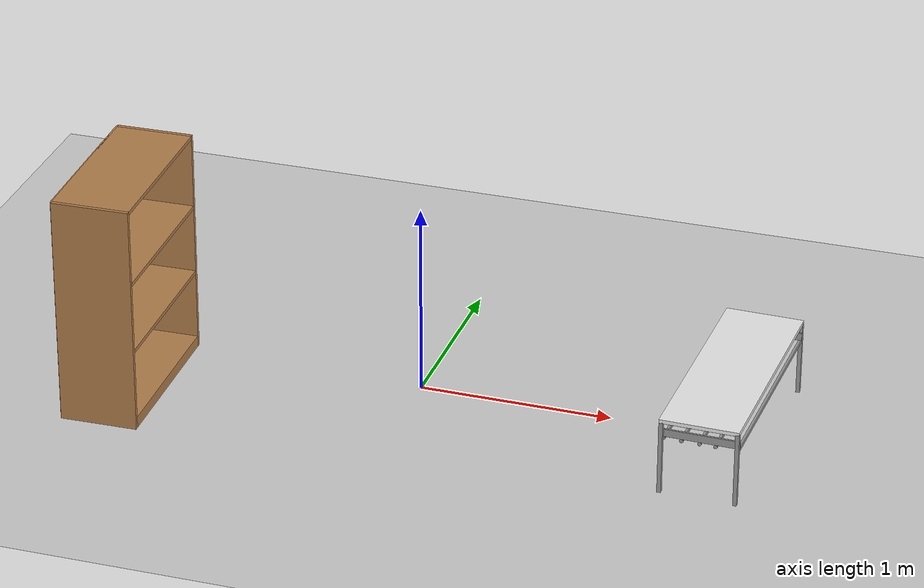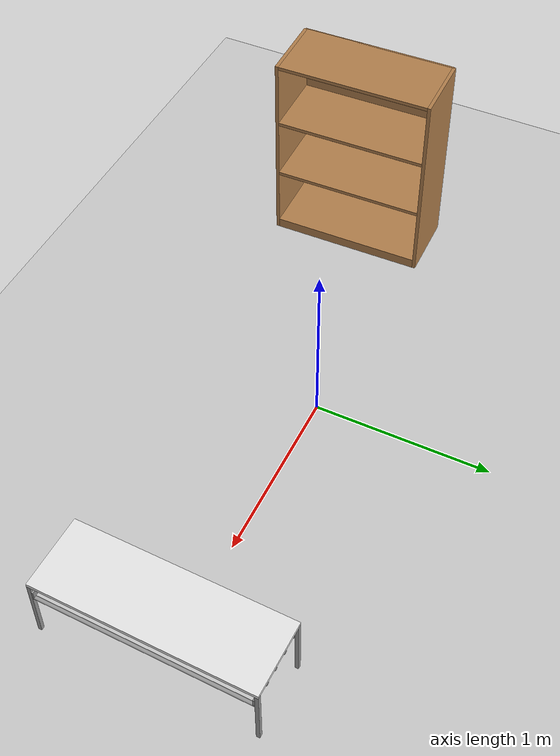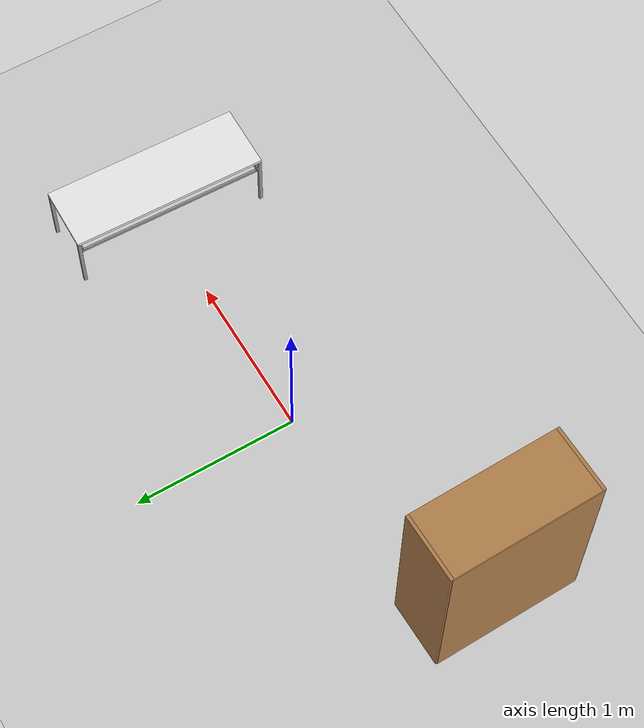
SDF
<sdf version="1.6">
 <world name="default">
  <physics name="default_physics" default="0" type="ode">
   <max_step_size>0.001</max_step_size>
   <real_time_factor>1</real_time_factor>
   <real_time_update_rate>1000</real_time_update_rate>
  </physics>
  <light name="sun" type="directional">
   <pose>0 0 10 0 -0 0</pose>
   <diffuse>0.8 0.8 0.8 1</diffuse>
   <specular>0.2 0.2 0.2 1</specular>
   <attenuation>
    <range>1000</range>
    <constant>0.9</constant>
    <linear>0.01</linear>
    <quadratic>0.001</quadratic>
   </attenuation>
   <direction>-0.5 0.1 -0.9</direction>
  </light>
  <model name="ground_plane">
   <static>1</static>
   <link name="link">
    <collision name="collision">
     <geometry><plane><normal>0 0 1</normal><size>100 100</size></plane></geometry>
     <surface>
      <contact><collide_bitmask>65535</collide_bitmask></contact>
      <friction><ode><mu>100</mu><mu2>50</mu2></ode></friction>
     </surface>
    </collision>
    <visual name="visual">
     <cast_shadows>0</cast_shadows>
     <geometry><plane><normal>0 0 1</normal><size>100 100</size></plane></geometry>
     <material>
      <script><uri>file://media/materials/scripts/gazebo.material</uri><name>Gazebo/Grey</name></script>
     </material>
    </visual>
   </link>
  </model>
  <gravity>0 0 -9.8</gravity>
  <magnetic_field>6e-06 2.3e-05 -4.2e-05</magnetic_field>
  <atmosphere type="adiabatic"/>
  <scene><ambient>0.4 0.4 0.4 1</ambient><background>0.7 0.7 0.7 1</background><shadows>1</shadows></scene>
  <audio><device>default</device></audio>
  <spherical_coordinates>
   <surface_model>EARTH_WGS84</surface_model>
   <latitude_deg>0</latitude_deg>
   <longitude_deg>0</longitude_deg>
   <elevation>0</elevation>
   <heading_deg>0</heading_deg>
  </spherical_coordinates>
  <model name="wrc_long_table">
   <static>1</static>
   <link name="link">
    <inertial><mass>1</mass></inertial>
    <collision name="top">
     <pose>0 0 0.39 0 -0 0</pose>
     <geometry><box><size>1.2 0.4 0.02</size></box></geometry>
    </collision>
    <visual name="top_v">
     <pose>0 0 0.39 0 -0 0</pose>
     <geometry><box><size>1.2 0.4 0.02</size></box></geometry>
     <material>
      <script><uri>file://media/materials/scripts/gazebo.material</uri><name>Gazebo/White</name></script>
     </material>
    </visual>
    <collision name="leg1">
     <pose>0.59 0.19 0.185 0 -0 0</pose>
     <geometry><box><size>0.02 0.02 0.4</size></box></geometry>
    </collision>
    <visual name="leg1_v">
     <pose>0.59 0.19 0.185 0 -0 0</pose>
     <geometry><box><size>0.02 0.02 0.4</size></box></geometry>
     <material>
      <script><uri>file://media/materials/scripts/gazebo.material</uri><name>Gazebo/Gray</name></script>
     </material>
    </visual>
    <collision name="leg2">
     <pose>-0.59 0.19 0.185 0 -0 0</pose>
     <geometry><box><size>0.02 0.02 0.4</size></box></geometry>
    </collision>
    <visual name="leg2_v">
     <pose>-0.59 0.19 0.185 0 -0 0</pose>
     <geometry><box><size>0.02 0.02 0.4</size></box></geometry>
     <material>
      <script><uri>file://media/materials/scripts/gazebo.material</uri><name>Gazebo/Gray</name></script>
     </material>
    </visual>
    <collision name="leg3">
     <pose>0.59 -0.19 0.185 0 -0 0</pose>
     <geometry><box><size>0.02 0.02 0.4</size></box></geometry>
    </collision>
    <visual name="leg3_v">
     <pose>0.59 -0.19 0.185 0 -0 0</pose>
     <geometry><box><size>0.02 0.02 0.4</size></box></geometry>
     <material>
      <script><uri>file://media/materials/scripts/gazebo.material</uri><name>Gazebo/Gray</name></script>
     </material>
    </visual>
    <collision name="leg4">
     <pose>-0.59 -0.19 0.185 0 -0 0</pose>
     <geometry><box><size>0.02 0.02 0.4</size></box></geometry>
    </collision>
    <visual name="leg4_v">
     <pose>-0.59 -0.19 0.185 0 -0 0</pose>
     <geometry><box><size>0.02 0.02 0.4</size></box></geometry>
     <material>
      <script><uri>file://media/materials/scripts/gazebo.material</uri><name>Gazebo/Gray</name></script>
     </material>
    </visual>
    <collision name="side_panel1">
     <pose>0.575 0 0.32 0 -0 0</pose>
     <geometry><box><size>0.01 0.4 0.04</size></box></geometry>
    </collision>
    <visual name="side_panel1_v">
     <pose>0.575 0 0.32 0 -0 0</pose>
     <geometry><box><size>0.01 0.4 0.04</size></box></geometry>
     <material>
      <script><uri>file://media/materials/scripts/gazebo.material</uri><name>Gazebo/Gray</name></script>
     </material>
    </visual>
    <collision name="side_panel2">
     <pose>-0.575 0 0.32 0 -0 0</pose>
     <geometry><box><size>0.01 0.4 0.04</size></box></geometry>
    </collision>
    <visual name="side_panel2_v">
     <pose>-0.575 0 0.32 0 -0 0</pose>
     <geometry><box><size>0.01 0.4 0.04</size></box></geometry>
     <material>
      <script><uri>file://media/materials/scripts/gazebo.material</uri><name>Gazebo/Gray</name></script>
     </material>
    </visual>
    <collision name="bar1">
     <pose>0 0.2 0.29 0 1.57 0</pose>
     <geometry><cylinder><radius>0.01</radius><length>1.16</length></cylinder></geometry>
    </collision>
    <visual name="bar1_v">
     <pose>0 0.19 0.29 0 1.57 0</pose>
     <geometry><cylinder><radius>0.01</radius><length>1.16</length></cylinder></geometry>
     <material>
      <script><uri>file://media/materials/scripts/gazebo.material</uri><name>Gazebo/Gray</name></script>
     </material>
    </visual>
    <collision name="bar2">
     <pose>0 0.08 0.29 0 1.57 0</pose>
     <geometry><cylinder><radius>0.01</radius><length>1.16</length></cylinder></geometry>
    </collision>
    <visual name="bar2_v">
     <pose>0 0.08 0.29 0 1.57 0</pose>
     <geometry><cylinder><radius>0.01</radius><length>1.16</length></cylinder></geometry>
     <material>
      <script><uri>file://media/materials/scripts/gazebo.material</uri><name>Gazebo/Gray</name></script>
     </material>
    </visual>
    <collision name="bar3">
     <pose>0 0 0.29 0 1.57 0</pose>
     <geometry><cylinder><radius>0.01</radius><length>1.16</length></cylinder></geometry>
    </collision>
    <visual name="bar3_v">
     <pose>0 0 0.29 0 1.57 0</pose>
     <geometry><cylinder><radius>0.01</radius><length>1.16</length></cylinder></geometry>
     <material>
      <script><uri>file://media/materials/scripts/gazebo.material</uri><name>Gazebo/Gray</name></script>
     </material>
    </visual>
    <collision name="bar4">
     <pose>0 -0.08 0.29 0 1.57 0</pose>
     <geometry><cylinder><radius>0.01</radius><length>1.16</length></cylinder></geometry>
    </collision>
    <visual name="bar4_v">
     <pose>0 -0.09 0.29 0 1.57 0</pose>
     <geometry><cylinder><radius>0.01</radius><length>1.16</length></cylinder></geometry>
     <material>
      <script><uri>file://media/materials/scripts/gazebo.material</uri><name>Gazebo/Gray</name></script>
     </material>
    </visual>
    <collision name="bar5">
     <pose>0 -0.18 0.29 0 1.57 0</pose>
     <geometry><cylinder><radius>0.01</radius><length>1.16</length></cylinder></geometry>
    </collision>
    <visual name="bar5_v">
     <pose>0 -0.18 0.29 0 1.57 0</pose>
     <geometry><cylinder><radius>0.01</radius><length>1.16</length></cylinder></geometry>
     <material>
      <script><uri>file://media/materials/scripts/gazebo.material</uri><name>Gazebo/Gray</name></script>
     </material>
    </visual>
   </link>
   <pose>1.61515 -0.02037 -0 0 0 -1.59609</pose>
  </model>
  <model name="bookshelf">
   <static>1</static>
   <link name="link">
    <inertial><mass>1</mass></inertial>
    <collision name="back">
     <pose>0 0.005 0.6 0 -0 0</pose>
     <geometry><box><size>0.9 0.01 1.2</size></box></geometry>
    </collision>
    <visual name="visual1">
     <pose>0 0.005 0.6 0 -0 0</pose>
     <geometry><box><size>0.9 0.01 1.2</size></box></geometry>
     <material>
      <script><uri>file://media/materials/scripts/gazebo.material</uri><name>Gazebo/Wood</name></script>
     </material>
    </visual>
    <collision name="left_side">
     <pose>0.45 -0.195 0.6 0 -0 0</pose>
     <geometry><box><size>0.02 0.4 1.2</size></box></geometry>
    </collision>
    <visual name="visual2">
     <pose>0.45 -0.195 0.6 0 -0 0</pose>
     <geometry><box><size>0.02 0.4 1.2</size></box></geometry>
     <material>
      <script><uri>file://media/materials/scripts/gazebo.material</uri><name>Gazebo/Wood</name></script>
     </material>
    </visual>
    <collision name="right_side">
     <pose>-0.45 -0.195 0.6 0 -0 0</pose>
     <geometry><box><size>0.02 0.4 1.2</size></box></geometry>
    </collision>
    <visual name="visual3">
     <pose>-0.45 -0.195 0.6 0 -0 0</pose>
     <geometry><box><size>0.02 0.4 1.2</size></box></geometry>
     <material>
      <script><uri>file://media/materials/scripts/gazebo.material</uri><name>Gazebo/Wood</name></script>
     </material>
    </visual>
    <collision name="bottom">
     <pose>0 -0.195 0.03 0 -0 0</pose>
     <geometry><box><size>0.88 0.4 0.06</size></box></geometry>
    </collision>
    <visual name="visual4">
     <pose>0 -0.195 0.03 0 -0 0</pose>
     <geometry><box><size>0.88 0.4 0.06</size></box></geometry>
     <material>
      <script><uri>file://media/materials/scripts/gazebo.material</uri><name>Gazebo/Wood</name></script>
     </material>
    </visual>
    <collision name="top">
     <pose>0 -0.195 1.19 0 -0 0</pose>
     <geometry><box><size>0.88 0.4 0.02</size></box></geometry>
    </collision>
    <visual name="visual5">
     <pose>0 -0.195 1.19 0 -0 0</pose>
     <geometry><box><size>0.88 0.4 0.02</size></box></geometry>
     <material>
      <script><uri>file://media/materials/scripts/gazebo.material</uri><name>Gazebo/Wood</name></script>
     </material>
    </visual>
    <collision name="low_shelf">
     <pose>0 -0.195 0.43 0 -0 0</pose>
     <geometry><box><size>0.88 0.4 0.02</size></box></geometry>
    </collision>
    <visual name="visual6">
     <pose>0 -0.195 0.43 0 -0 0</pose>
     <geometry><box><size>0.88 0.4 0.02</size></box></geometry>
     <material>
      <script><uri>file://media/materials/scripts/gazebo.material</uri><name>Gazebo/Wood</name></script>
     </material>
    </visual>
    <collision name="high_shelf">
     <pose>0 -0.195 0.8 0 -0 0</pose>
     <geometry><box><size>0.88 0.4 0.02</size></box></geometry>
    </collision>
    <visual name="visual7">
     <pose>0 -0.195 0.8 0 -0 0</pose>
     <geometry><box><size>0.88 0.4 0.02</size></box></geometry>
     <material>
      <script><uri>file://media/materials/scripts/gazebo.material</uri><name>Gazebo/Wood</name></script>
     </material>
    </visual>
   </link>
   <pose>-1.61686 -0.390409 0 0 -0 1.59275</pose>
  </model>
 </world>
</sdf>
